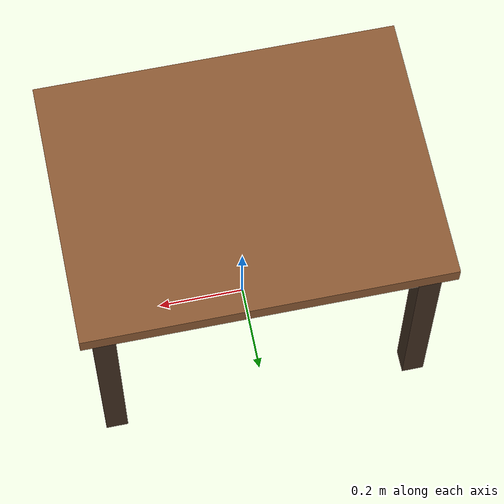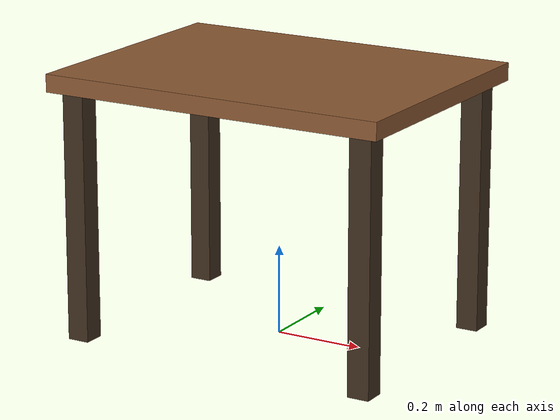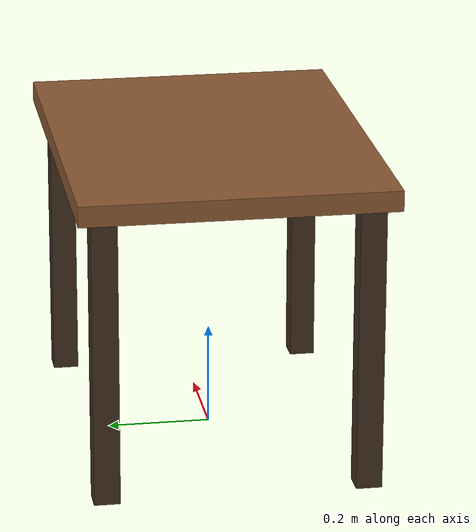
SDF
<?xml version="1.0" ?>
<sdf version="1.9">
  <model name="table">
    <static>true</static>
    <pose>0 0 0 0 0 0</pose>

    <!-- Label: table = 3 -->
    <plugin filename="gz-sim-label-system" name="gz::sim::systems::Label">
      <label>3</label>
    </plugin>

    <link name="link">

      <!-- Tabletop -->
      <!-- center at 0.58 so surface = 0.60 -->
      <collision name="top_collision">
        <pose>0 0 0.58 0 0 0</pose>
        <geometry>
          <box><size>0.8 0.6 0.04</size></box>
        </geometry>
      </collision>

      <visual name="top_visual">
        <pose>0 0 0.58 0 0 0</pose>
        <geometry>
          <box><size>0.8 0.6 0.04</size></box>
        </geometry>
        <material>
          <diffuse>0.55 0.35 0.2 1</diffuse>
        </material>
      </visual>

      <!-- Legs -->
      <!-- height = 0.56 -->
      <!-- center = 0.28 -->

      <collision name="leg1_col">
        <pose>0.35 0.25 0.28 0 0 0</pose>
        <geometry><box><size>0.05 0.05 0.56</size></box></geometry>
      </collision>
      <visual name="leg1_vis">
        <pose>0.35 0.25 0.28 0 0 0</pose>
        <geometry><box><size>0.05 0.05 0.56</size></box></geometry>
        <material><diffuse>0.25 0.18 0.12 1</diffuse></material>
      </visual>

      <collision name="leg2_col">
        <pose>0.35 -0.25 0.28 0 0 0</pose>
        <geometry><box><size>0.05 0.05 0.56</size></box></geometry>
      </collision>
      <visual name="leg2_vis">
        <pose>0.35 -0.25 0.28 0 0 0</pose>
        <geometry><box><size>0.05 0.05 0.56</size></box></geometry>
        <material><diffuse>0.25 0.18 0.12 1</diffuse></material>
      </visual>

      <collision name="leg3_col">
        <pose>-0.35 0.25 0.28 0 0 0</pose>
        <geometry><box><size>0.05 0.05 0.56</size></box></geometry>
      </collision>
      <visual name="leg3_vis">
        <pose>-0.35 0.25 0.28 0 0 0</pose>
        <geometry><box><size>0.05 0.05 0.56</size></box></geometry>
        <material><diffuse>0.25 0.18 0.12 1</diffuse></material>
      </visual>

      <collision name="leg4_col">
        <pose>-0.35 -0.25 0.28 0 0 0</pose>
        <geometry><box><size>0.05 0.05 0.56</size></box></geometry>
      </collision>
      <visual name="leg4_vis">
        <pose>-0.35 -0.25 0.28 0 0 0</pose>
        <geometry><box><size>0.05 0.05 0.56</size></box></geometry>
        <material><diffuse>0.25 0.18 0.12 1</diffuse></material>
      </visual>

    </link>
  </model>
</sdf>
